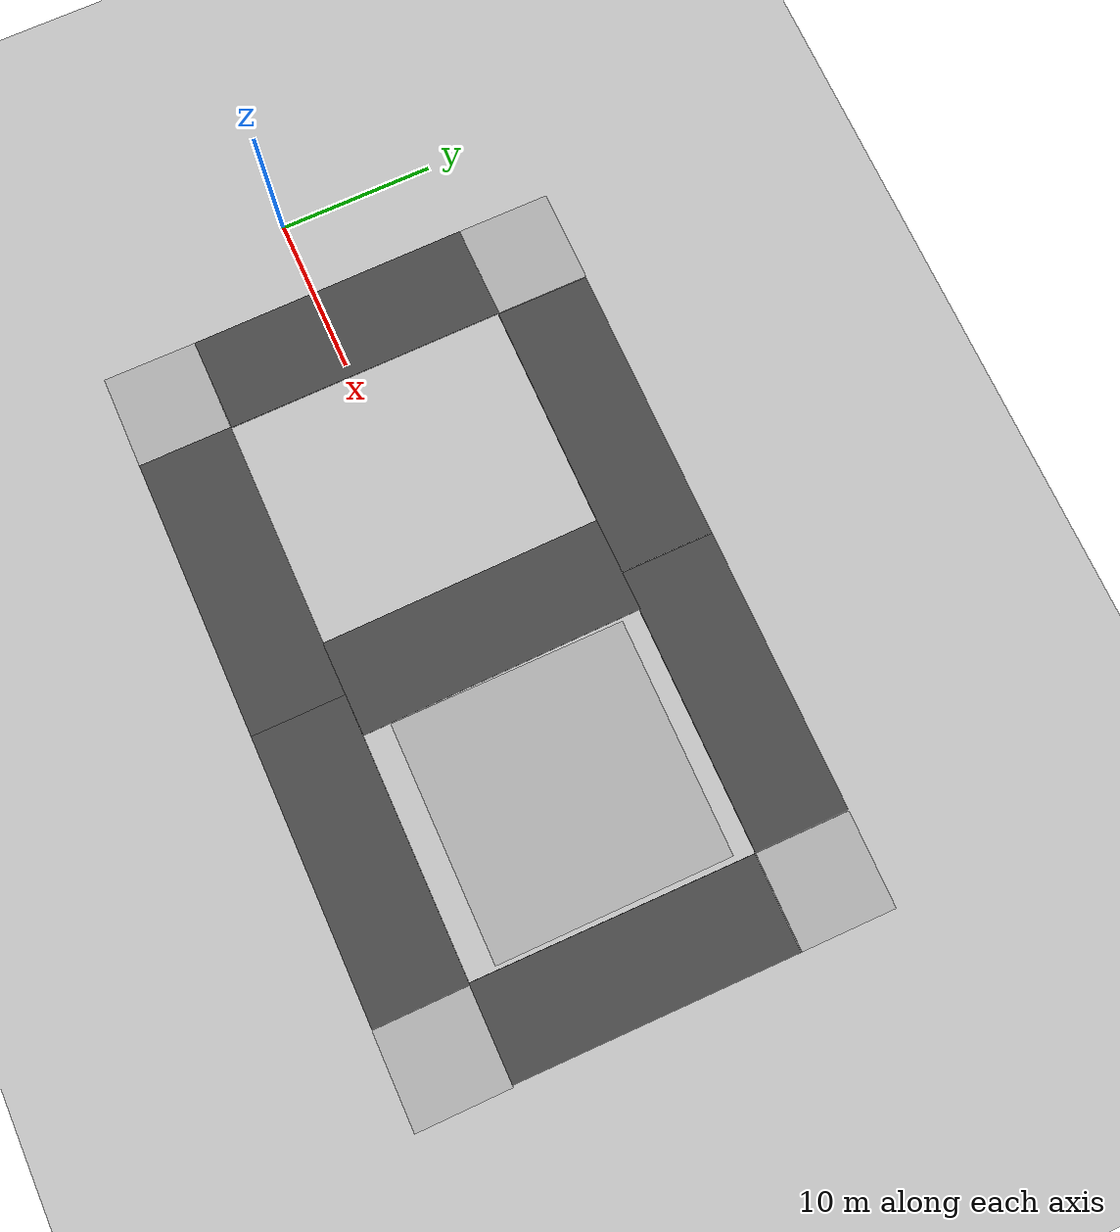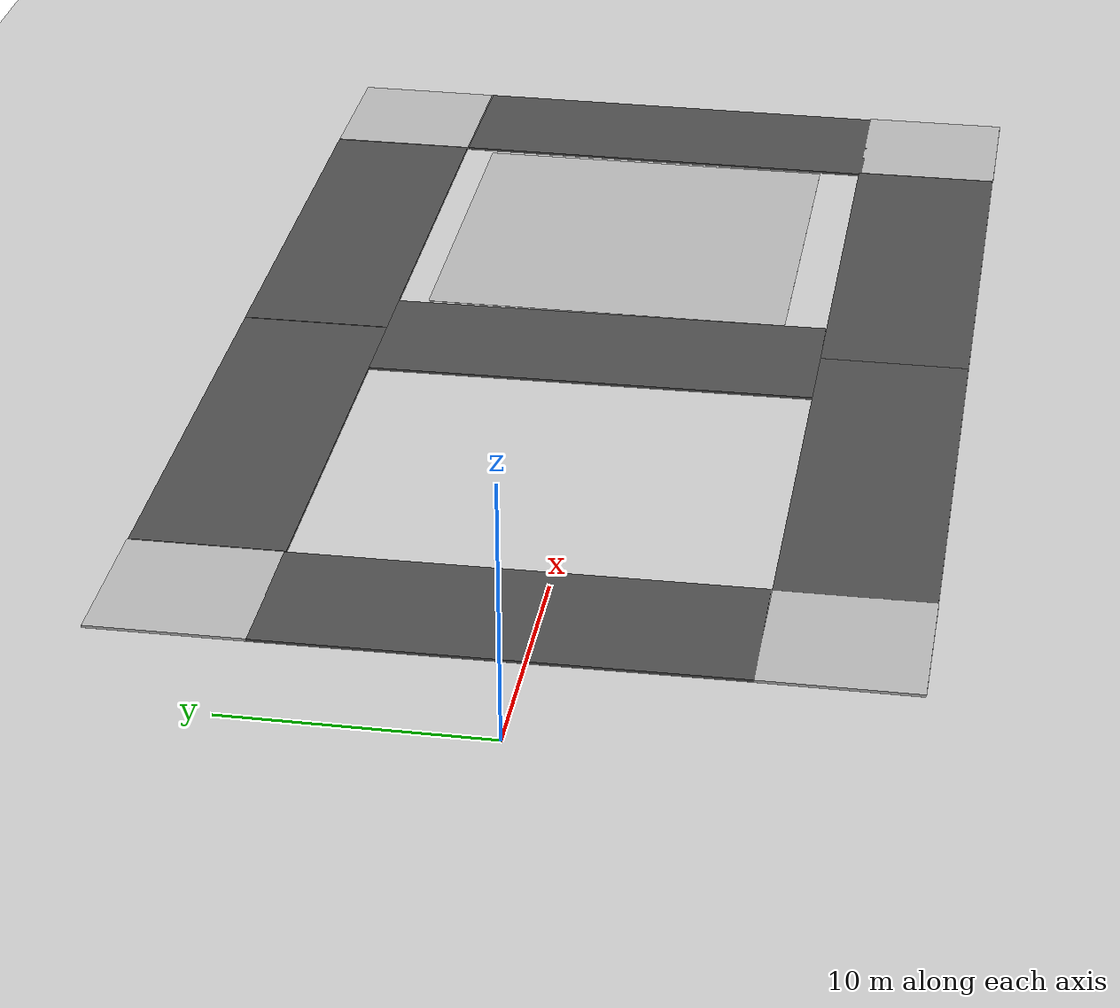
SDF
<sdf version="1.7">
 <world name="default">
  <light name="sun" type="directional">
   <pose>0 0 10 0 -0 0</pose>
   <diffuse>0.8 0.8 0.8 1</diffuse>
   <specular>0.2 0.2 0.2 1</specular>
   <attenuation>
    <range>1000</range>
    <constant>0.9</constant>
    <linear>0.01</linear>
    <quadratic>0.001</quadratic>
   </attenuation>
   <direction>-0.5 0.1 -0.9</direction>
   <spot><inner_angle>0</inner_angle><outer_angle>0</outer_angle><falloff>0</falloff></spot>
  </light>
  <model name="ground_plane">
   <pose>0 0 -1 0 -0 0</pose>
   <static>1</static>
   <link name="link">
    <collision name="collision">
     <geometry><plane><normal>0 0 1</normal><size>100 100</size></plane></geometry>
     <surface><friction><ode><mu>100</mu><mu2>50</mu2></ode></friction></surface>
    </collision>
    <visual name="visual">
     <cast_shadows>0</cast_shadows>
     <geometry><plane><normal>0 0 1</normal><size>100 100</size></plane></geometry>
     <material>
      <script><uri>file://media/materials/scripts/gazebo.material</uri><name>Gazebo/Grey</name></script>
     </material>
    </visual>
   </link>
  </model>
  <gravity>0 0 -9.8</gravity>
  <magnetic_field>6e-06 2.3e-05 -4.2e-05</magnetic_field>
  <atmosphere type="adiabatic"/>
  <physics type="ode">
   <max_step_size>0.001</max_step_size>
   <real_time_factor>1</real_time_factor>
   <real_time_update_rate>1000</real_time_update_rate>
  </physics>
  <scene><ambient>0.4 0.4 0.4 1</ambient><background>0.7 0.7 0.7 1</background><shadows>1</shadows></scene>
  <spherical_coordinates>
   <surface_model>EARTH_WGS84</surface_model>
   <latitude_deg>0</latitude_deg>
   <longitude_deg>0</longitude_deg>
   <elevation>0</elevation>
   <heading_deg>0</heading_deg>
  </spherical_coordinates>
  <model name="road_plane_3">
   <static>1</static>
   <link name="link">
    <collision name="collision"><geometry><box><size>18 6 0.1</size></box></geometry></collision>
    <visual name="visual">
     <cast_shadows>0</cast_shadows>
     <geometry><box><size>18 6 0.1</size></box></geometry>
     <material>
      <script>
       <uri>model://road_plane_3/materials/scripts</uri>
       <uri>model://road_plane_3/materials/textures</uri>
       <name>vrc/road3</name>
      </script>
     </material>
    </visual>
   </link>
   <pose>19.853 12.982 0 0 -0 0</pose>
  </model>
  <model name="road_plane_3_clone">
   <static>1</static>
   <link name="link">
    <collision name="collision"><geometry><box><size>18 6 0.1</size></box></geometry></collision>
    <visual name="visual">
     <cast_shadows>0</cast_shadows>
     <geometry><box><size>18 6 0.1</size></box></geometry>
     <material>
      <script>
       <uri>model://road_plane_3/materials/scripts</uri>
       <uri>model://road_plane_3/materials/textures</uri>
       <name>vrc/road3</name>
      </script>
     </material>
    </visual>
   </link>
   <pose>37.8896 12.9852 0 0 -0 0</pose>
  </model>
  <model name="road_plane_3_clone_0">
   <static>1</static>
   <link name="link">
    <collision name="collision"><geometry><box><size>18 6 0.1</size></box></geometry></collision>
    <visual name="visual">
     <cast_shadows>0</cast_shadows>
     <geometry><box><size>18 6 0.1</size></box></geometry>
     <material>
      <script>
       <uri>model://road_plane_3/materials/scripts</uri>
       <uri>model://road_plane_3/materials/textures</uri>
       <name>vrc/road3</name>
      </script>
     </material>
    </visual>
   </link>
   <pose>37.8616 -10.9746 0 0 -0 0</pose>
  </model>
  <model name="road_plane_3_clone_1">
   <static>1</static>
   <link name="link">
    <collision name="collision"><geometry><box><size>18 6 0.1</size></box></geometry></collision>
    <visual name="visual">
     <cast_shadows>0</cast_shadows>
     <geometry><box><size>18 6 0.1</size></box></geometry>
     <material>
      <script>
       <uri>model://road_plane_3/materials/scripts</uri>
       <uri>model://road_plane_3/materials/textures</uri>
       <name>vrc/road3</name>
      </script>
     </material>
    </visual>
   </link>
   <pose>19.8743 -10.9762 0 0 -0 0</pose>
  </model>
  <model name="road_diag">
   <static>1</static>
   <link name="link">
    <collision name="collision"><geometry><box><size>6 6 0.1</size></box></geometry></collision>
    <visual name="visual">
     <cast_shadows>0</cast_shadows>
     <geometry><box><size>6 6 0.1</size></box></geometry>
     <material>
      <script>
       <uri>model://road_diag/materials/scripts</uri>
       <uri>model://road_diag/materials/textures</uri>
       <name>vrc/diag</name>
      </script>
     </material>
    </visual>
   </link>
   <pose>49.8812 -10.9944 0 0 -0 0</pose>
  </model>
  <model name="road_plane_3_clone_0_clone">
   <static>1</static>
   <link name="link">
    <collision name="collision"><geometry><box><size>18 6 0.1</size></box></geometry></collision>
    <visual name="visual">
     <cast_shadows>0</cast_shadows>
     <geometry><box><size>18 6 0.1</size></box></geometry>
     <material>
      <script>
       <uri>model://road_plane_3/materials/scripts</uri>
       <uri>model://road_plane_3/materials/textures</uri>
       <name>vrc/road3</name>
      </script>
     </material>
    </visual>
   </link>
   <pose>49.8394 0.905815 0 0 -0 1.56181</pose>
  </model>
  <model name="road_diag_clone">
   <static>1</static>
   <link name="link">
    <collision name="collision"><geometry><box><size>6 6 0.1</size></box></geometry></collision>
    <visual name="visual">
     <cast_shadows>0</cast_shadows>
     <geometry><box><size>6 6 0.1</size></box></geometry>
     <material>
      <script>
       <uri>model://road_diag/materials/scripts</uri>
       <uri>model://road_diag/materials/textures</uri>
       <name>vrc/diag</name>
      </script>
     </material>
    </visual>
   </link>
   <pose>49.9359 12.9593 0 0 -0 1.56447</pose>
  </model>
  <model name="road_diag_clone_clone">
   <static>1</static>
   <link name="link">
    <collision name="collision"><geometry><box><size>6 6 0.1</size></box></geometry></collision>
    <visual name="visual">
     <cast_shadows>0</cast_shadows>
     <geometry><box><size>6 6 0.1</size></box></geometry>
     <material>
      <script>
       <uri>model://road_diag/materials/scripts</uri>
       <uri>model://road_diag/materials/textures</uri>
       <name>vrc/diag</name>
      </script>
     </material>
    </visual>
   </link>
   <pose>7.80726 13.0182 0 0 0 -3.14078</pose>
  </model>
  <model name="road_diag_clone_clone_0">
   <static>1</static>
   <link name="link">
    <collision name="collision"><geometry><box><size>6 6 0.1</size></box></geometry></collision>
    <visual name="visual">
     <cast_shadows>0</cast_shadows>
     <geometry><box><size>6 6 0.1</size></box></geometry>
     <material>
      <script>
       <uri>model://road_diag/materials/scripts</uri>
       <uri>model://road_diag/materials/textures</uri>
       <name>vrc/diag</name>
      </script>
     </material>
    </visual>
   </link>
   <pose>7.89762 -10.9743 0 0 0 -1.57483</pose>
  </model>
  <model name="road_plane_3_clone_1_clone">
   <static>1</static>
   <link name="link">
    <collision name="collision"><geometry><box><size>18 6 0.1</size></box></geometry></collision>
    <visual name="visual">
     <cast_shadows>0</cast_shadows>
     <geometry><box><size>18 6 0.1</size></box></geometry>
     <material>
      <script>
       <uri>model://road_plane_3/materials/scripts</uri>
       <uri>model://road_plane_3/materials/textures</uri>
       <name>vrc/road3</name>
      </script>
     </material>
    </visual>
   </link>
   <pose>7.85835 1.03235 0 0 0 -1.56451</pose>
  </model>
  <model name="road_plane_3_0">
   <static>1</static>
   <link name="link">
    <collision name="collision"><geometry><box><size>18 6 0.1</size></box></geometry></collision>
    <visual name="visual">
     <cast_shadows>0</cast_shadows>
     <geometry><box><size>18 6 0.1</size></box></geometry>
     <material>
      <script>
       <uri>model://road_plane_3/materials/scripts</uri>
       <uri>model://road_plane_3/materials/textures</uri>
       <name>vrc/road3</name>
      </script>
     </material>
    </visual>
   </link>
   <pose>28.417 1.0147 0 0 0 -1.56082</pose>
  </model>
  <model name="F2H_ground_plane">
   <static>1</static>
   <link name="link">
    <collision name="collision">
     <geometry><plane><normal>0 0 1</normal><size>15 15</size></plane></geometry>
     <surface><friction><ode><mu>100</mu><mu2>50</mu2></ode></friction></surface>
    </collision>
    <visual name="visual">
     <cast_shadows>0</cast_shadows>
     <geometry><plane><normal>0 0 1</normal><size>15 15</size></plane></geometry>
     <material>
      <script>
       <uri>model://F2H_logo_plane/materials/scripts</uri>
       <uri>model://F2H_logo_plane/materials/textures/</uri>
       <name>F2HGroundPlane/Image</name>
      </script>
     </material>
    </visual>
   </link>
   <pose>39.034 1.2586 0.025 0 -0 1.57</pose>
  </model>
 </world>
</sdf>
